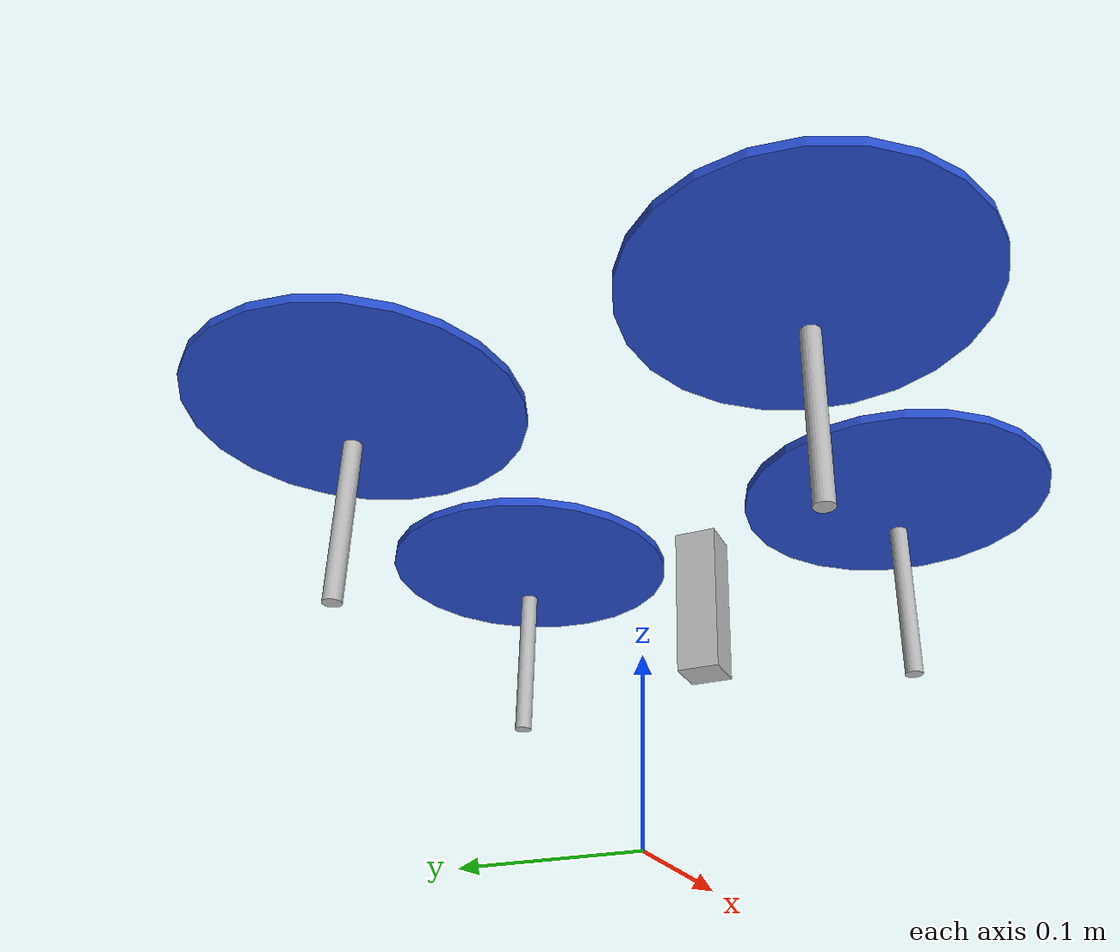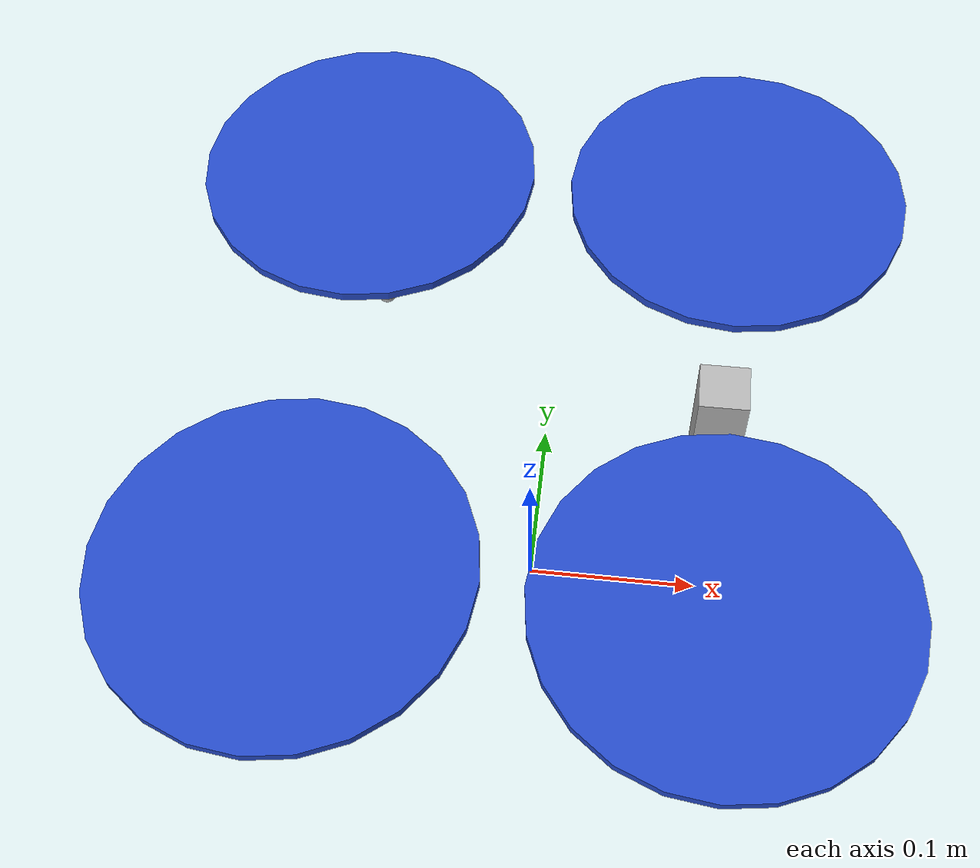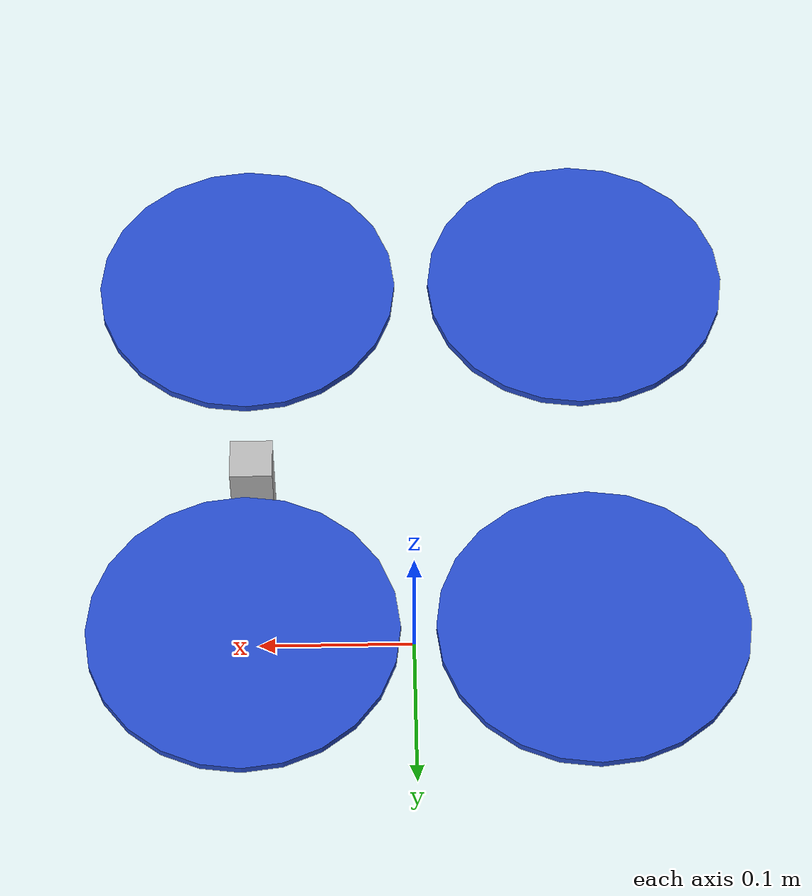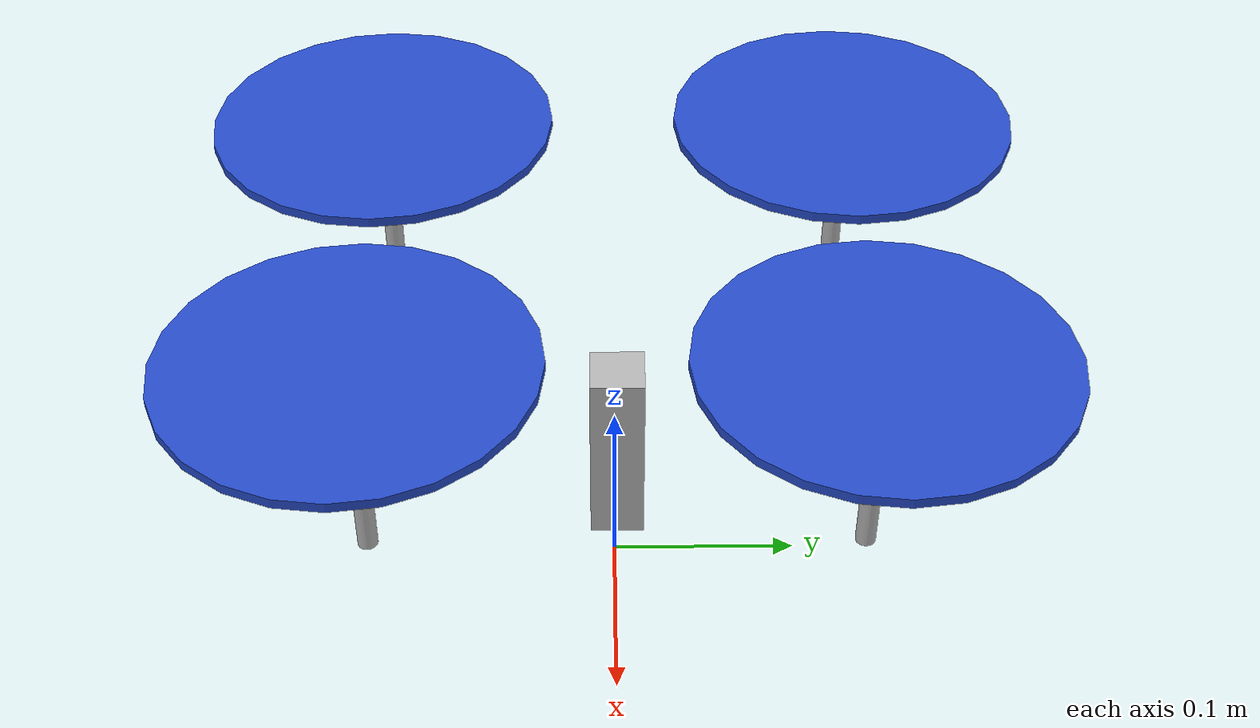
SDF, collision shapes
<?xml version='1.0'?>
<sdf version='1.6'>
    <model name='adrienne'>
        <pose>0 0 0.2 0 0 0</pose>
        <link name='base_link'>
            <velocity_decay>
                <linear>0.0</linear>
                <angular>0.0</angular>
            </velocity_decay>
            <inertial>
                <pose>0 0 0 0 0 0</pose>
                <mass>1.6</mass>
                <inertia>
                    <ixx>0.008</ixx>
                    <ixy>0</ixy>
                    <ixz>0</ixz>
                    <iyy>0.015</iyy>
                    <iyz>0</iyz>
                    <izz>0.017</izz>
                </inertia>
            </inertial>
            <visual name='base_link_visual'>
                <geometry>
                    <mesh>
                        <uri>model://adrienne/meshes/drone_assembly_wo_props.dae</uri>
                    </mesh>
                </geometry>
            </visual>

            <collision name='front_left_leg_collision'>
                <pose>0.0989 0.1209 -0.047 0 0 0</pose>
                <geometry>
                    <cylinder>
                        <radius>0.005</radius>
                        <length>0.09</length>
                    </cylinder>
                </geometry>
                <surface>
                    <contact>
                        <ode>
                            <max_vel>100.0</max_vel>
                            <min_depth>0.001</min_depth>
                        </ode>
                    </contact>
                    <friction>
                        <ode>
                            <mu>100000.0</mu>
                            <mu2>100000.0</mu2>
                        </ode>
                    </friction>
                </surface>
            </collision>
            <collision name='front_right_leg_collision'>
                <pose>0.0989 -0.1209 -0.047 0 0 0</pose>
                <geometry>
                    <cylinder>
                        <radius>0.005</radius>
                        <length>0.09</length>
                    </cylinder>
                </geometry>
                <surface>
                    <contact>
                        <ode>
                            <max_vel>100.0</max_vel>
                            <min_depth>0.001</min_depth>
                        </ode>
                    </contact>
                    <friction>
                        <ode>
                            <mu>100000.0</mu>
                            <mu2>100000.0</mu2>
                        </ode>
                    </friction>
                </surface>
            </collision>
            <collision name='rear_left_leg_collision'>
                <pose>-0.0989 0.1209 -0.047 0 0 0</pose>
                <geometry>
                    <cylinder>
                        <radius>0.005</radius>
                        <length>0.09</length>
                    </cylinder>
                </geometry>
                <surface>
                    <contact>
                        <ode>
                            <max_vel>100.0</max_vel>
                            <min_depth>0.001</min_depth>
                        </ode>
                    </contact>
                    <friction>
                        <ode>
                            <mu>100000.0</mu>
                            <mu2>100000.0</mu2>
                        </ode>
                    </friction>
                </surface>
            </collision>
            <collision name='rear_right_leg_collision'>
                <pose>-0.0989 -0.1209 -0.047 0 0 0</pose>
                <geometry>
                    <cylinder>
                        <radius>0.005</radius>
                        <length>0.09</length>
                    </cylinder>
                </geometry>
                <surface>
                    <contact>
                        <ode>
                            <max_vel>100.0</max_vel>
                            <min_depth>0.001</min_depth>
                        </ode>
                    </contact>
                    <friction>
                        <ode>
                            <mu>100000.0</mu>
                            <mu2>100000.0</mu2>
                        </ode>
                    </friction>
                </surface>
            </collision>
        </link>

        <link name='adrienne/imu_link'>
            <inertial>
                <pose>0 0 0 0 0 0</pose>
                <mass>0.0001</mass>
                <inertia>
                    <ixx>0.0001</ixx>
                    <ixy>0</ixy>
                    <ixz>0</ixz>
                    <iyy>0.0001</iyy>
                    <iyz>0</iyz>
                    <izz>0.0001</izz>
                </inertia>
            </inertial>
            <sensor name="imu_sensor" type="imu">
                <pose>0 0 0 3.141593 0 0</pose>
                <always_on>1</always_on>
                <update_rate>1000</update_rate>
            </sensor>
        </link>
        <joint name="adrienne/imu_joint" type="revolute">
            <child>adrienne/imu_link</child>
            <parent>base_link</parent>
            <axis>
                <xyz>0 0 1</xyz>
                <limit>
                    <lower>0</lower>
                    <upper>0</upper>
                    <effort>0</effort>
                    <velocity>0</velocity>
                </limit>
                <dynamics>
                    <damping>1.0</damping>
                </dynamics>
                <use_parent_model_frame>1</use_parent_model_frame>
            </axis>
            <physics>
                <ode>
                    <implicit_spring_damper>1</implicit_spring_damper>
                </ode>
            </physics>
        </joint>

        <link name='rotor_0'>
            <pose>0.0989 -0.1209 0.02 0 0 0</pose>
            <inertial>
                <pose>0 0 0 0 -0 0</pose>
                <mass>0.025</mass>
                <inertia>
                    <ixx>9.75e-06</ixx>
                    <ixy>0</ixy>
                    <ixz>0</ixz>
                    <iyy>0.000166704</iyy>
                    <iyz>0</iyz>
                    <izz>0.000167604</izz>
                </inertia>
            </inertial>
            <collision name='rotor_0_collision'>
                <pose>0 0 0 0 -0 0</pose>
                <geometry>
                    <!-- d = 7 inch disk shape collision -->
                    <cylinder>
                        <length>0.005</length>
                        <radius>0.0889</radius>
                    </cylinder>
                </geometry>
                <surface>
                    <contact>
                        <ode />
                    </contact>
                    <friction>
                        <ode />
                    </friction>
                </surface>
            </collision>
            <visual name='rotor_0_visual'>
                <pose>0 0 0 0 -0 0</pose>
                <geometry>
                    <mesh>
                        <scale>1 1 1</scale>
                        <uri>model://adrienne/meshes/prop_ccw.dae</uri>
                    </mesh>
                </geometry>
                <material>
                    <script>
                        <name>Gazebo/Blue</name>
                        <uri>__default__</uri>
                    </script>
                </material>
            </visual>
            <gravity>1</gravity>
            <velocity_decay />
            <self_collide>0</self_collide>
        </link>
        <joint name='rotor_0_joint' type='revolute'>
            <child>rotor_0</child>
            <parent>base_link</parent>
            <axis>
                <xyz>0 0 1</xyz>
                <limit>
                    <lower>-1e+16</lower>
                    <upper>1e+16</upper>
                </limit>
                <dynamics>
                    <damping>0.004</damping>
                </dynamics>
                <use_parent_model_frame>1</use_parent_model_frame>
            </axis>
            <physics>
                <ode>
                    <implicit_spring_damper>1</implicit_spring_damper>
                </ode>
            </physics>
            <sensor name="force_torque" type="force_torque">
                <update_rate>30</update_rate>
            </sensor>
        </joint>
        <link name="rotor_1">
            <pose>-0.0989 0.1209 0.02 0 0 0</pose>
            <inertial>
                <pose>0 0 0 0 -0 0</pose>
                <mass>0.025</mass>
                <inertia>
                    <ixx>9.75e-06</ixx>
                    <ixy>0</ixy>
                    <ixz>0</ixz>
                    <iyy>0.000166704</iyy>
                    <iyz>0</iyz>
                    <izz>0.000167604</izz>
                </inertia>
            </inertial>
            <collision name="rotor_1_collision">
                <pose>0 0 0 0 -0 0</pose>
                <geometry>
                    <!-- d = 7 inch disk shape collision -->
                    <cylinder>
                        <length>0.005</length>
                        <radius>0.0889</radius>
                    </cylinder>
                </geometry>
                <surface>
                    <contact>
                        <ode />
                    </contact>
                    <friction>
                        <ode />
                    </friction>
                </surface>
            </collision>
            <visual name="rotor_1_visual">
                <pose>0 0 0 0 -0 0</pose>
                <geometry>
                    <mesh>
                        <scale>1 1 1</scale>
                        <uri>model://adrienne/meshes/prop_ccw.dae</uri>
                    </mesh>
                </geometry>
                <material>
                    <script>
                        <name>Gazebo/Blue</name>
                        <uri>__default__</uri>
                    </script>
                </material>
            </visual>
            <gravity>1</gravity>
            <velocity_decay />
            <self_collide>0</self_collide>
        </link>
        <joint name="rotor_1_joint" type="revolute">
            <child>rotor_1</child>
            <parent>base_link</parent>
            <axis>
                <xyz>0 0 1</xyz>
                <limit>
                    <lower>-1e+16</lower>
                    <upper>1e+16</upper>
                </limit>
                <dynamics>
                    <damping>0.004</damping>
                </dynamics>
                <use_parent_model_frame>1</use_parent_model_frame>
            </axis>
            <physics>
                <ode>
                    <implicit_spring_damper>1</implicit_spring_damper>
                </ode>
            </physics>
            <sensor name="force_torque" type="force_torque">
                <update_rate>30</update_rate>
            </sensor>
        </joint>
        <link name="rotor_2">
            <pose>0.0989 0.1209 0.02 0 0 0</pose>
            <inertial>
                <pose>0 0 0 0 -0 0</pose>
                <mass>0.025</mass>
                <inertia>
                    <ixx>9.75e-06</ixx>
                    <ixy>0</ixy>
                    <ixz>0</ixz>
                    <iyy>0.000166704</iyy>
                    <iyz>0</iyz>
                    <izz>0.000167604</izz>
                </inertia>
            </inertial>
            <collision name="rotor_2_collision">
                <pose>0 0 0 0 -0 0</pose>
                <geometry>
                    <!-- d = 7 inch disk shape collision -->
                    <cylinder>
                        <length>0.005</length>
                        <radius>0.0889</radius>
                    </cylinder>
                </geometry>
                <surface>
                    <contact>
                        <ode />
                    </contact>
                    <friction>
                        <ode />
                    </friction>
                </surface>
            </collision>
            <visual name="rotor_2_visual">
                <pose>0 0 0 0 -0 0</pose>
                <geometry>
                    <mesh>
                        <scale>1 1 1</scale>
                        <uri>model://adrienne/meshes/prop_cw.dae</uri>
                    </mesh>
                </geometry>
                <material>
                    <script>
                        <name>Gazebo/Blue</name>
                        <uri>__default__</uri>
                    </script>
                </material>
            </visual>
            <gravity>1</gravity>
            <velocity_decay />
            <self_collide>0</self_collide>
        </link>
        <joint name="rotor_2_joint" type="revolute">
            <child>rotor_2</child>
            <parent>base_link</parent>
            <axis>
                <xyz>0 0 1</xyz>
                <limit>
                    <lower>-1e+16</lower>
                    <upper>1e+16</upper>
                </limit>
                <dynamics>
                    <damping>0.004</damping>
                </dynamics>
                <use_parent_model_frame>1</use_parent_model_frame>
            </axis>
            <physics>
                <ode>
                    <implicit_spring_damper>1</implicit_spring_damper>
                </ode>
            </physics>
            <sensor name="force_torque" type="force_torque">
                <update_rate>30</update_rate>
            </sensor>
        </joint>
        <link name="rotor_3">
            <pose>-0.0989 -0.1209 0.02 0 0 0</pose>
            <inertial>
                <pose>0 0 0 0 -0 0</pose>
                <mass>0.025</mass>
                <inertia>
                    <ixx>9.75e-06</ixx>
                    <ixy>0</ixy>
                    <ixz>0</ixz>
                    <iyy>0.000166704</iyy>
                    <iyz>0</iyz>
                    <izz>0.000167604</izz>
                </inertia>
            </inertial>
            <collision name="rotor_3_collision">
                <pose>0 0 0 0 -0 0</pose>
                <geometry>
                    <!-- d = 7 inch disk shape collision -->
                    <cylinder>
                        <length>0.005</length>
                        <radius>0.0889</radius>
                    </cylinder>
                </geometry>
                <surface>
                    <contact>
                        <ode />
                    </contact>
                    <friction>
                        <ode />
                    </friction>
                </surface>
            </collision>
            <visual name="rotor_3_visual">
                <pose>0 0 0 0 -0 0</pose>
                <geometry>
                    <mesh>
                        <scale>1 1 1</scale>
                        <uri>model://adrienne/meshes/prop_cw.dae</uri>
                    </mesh>
                </geometry>
                <material>
                    <script>
                        <name>Gazebo/Blue</name>
                        <uri>__default__</uri>
                    </script>
                </material>
            </visual>
            <gravity>1</gravity>
            <velocity_decay />
            <self_collide>0</self_collide>
        </link>
        <joint name="rotor_3_joint" type="revolute">
            <child>rotor_3</child>
            <parent>base_link</parent>
            <axis>
                <xyz>0 0 1</xyz>
                <limit>
                    <lower>-1e+16</lower>
                    <upper>1e+16</upper>
                </limit>
                <dynamics>
                    <damping>0.004</damping>
                </dynamics>
                <use_parent_model_frame>1</use_parent_model_frame>
            </axis>
            <physics>
                <ode>
                    <implicit_spring_damper>1</implicit_spring_damper>
                </ode>
            </physics>
            <sensor name="force_torque" type="force_torque">
                <update_rate>30</update_rate>
            </sensor>
        </joint>

        <!-- plugins -->

        <!-- rotor 0 -->
        <plugin name="rotor_0_blade_0" filename="libLiftDragPlugin.so">
            <a0>0.3</a0>
            <alpha_stall>1.4</alpha_stall>
            <cla>4.2500</cla>
            <cda>0.10</cda>
            <cma>0.00</cma>
            <cla_stall>-0.025</cla_stall>
            <cda_stall>0.0</cda_stall>
            <cma_stall>0.0</cma_stall>
            <area>0.003</area>
            <air_density>1.2041</air_density>
            <cp>0.044450 0.000000 0.000000</cp>
            <forward>0.000000 1.000000 0.000000</forward>
            <upward>0 0 1</upward>
            <link_name>adrienne::rotor_0</link_name>
        </plugin>
        <plugin name="rotor_0_blade_1" filename="libLiftDragPlugin.so">
            <a0>0.3</a0>
            <alpha_stall>1.4</alpha_stall>
            <cla>4.2500</cla>
            <cda>0.10</cda>
            <cma>0.00</cma>
            <cla_stall>-0.025</cla_stall>
            <cda_stall>0.0</cda_stall>
            <cma_stall>0.0</cma_stall>
            <area>0.003</area>
            <air_density>1.2041</air_density>
            <cp>-0.022225 0.038495 0.000000</cp>
            <forward>-0.866025 -0.500000 0.000000</forward>
            <upward>0 0 1</upward>
            <link_name>adrienne::rotor_0</link_name>
        </plugin>
        <plugin name="rotor_0_blade_2" filename="libLiftDragPlugin.so">
            <a0>0.3</a0>
            <alpha_stall>1.4</alpha_stall>
            <cla>4.2500</cla>
            <cda>0.10</cda>
            <cma>0.00</cma>
            <cla_stall>-0.025</cla_stall>
            <cda_stall>0.0</cda_stall>
            <cma_stall>0.0</cma_stall>
            <area>0.003</area>
            <air_density>1.2041</air_density>
            <cp>-0.022225 -0.038495 0.000000</cp>
            <forward>0.866025 -0.500000 0.000000</forward>
            <upward>0 0 1</upward>
            <link_name>adrienne::rotor_0</link_name>
        </plugin>

        <!-- rotor 1 -->
        <plugin name="rotor_1_blade_0" filename="libLiftDragPlugin.so">
            <a0>0.3</a0>
            <alpha_stall>1.4</alpha_stall>
            <cla>4.2500</cla>
            <cda>0.10</cda>
            <cma>0.00</cma>
            <cla_stall>-0.025</cla_stall>
            <cda_stall>0.0</cda_stall>
            <cma_stall>0.0</cma_stall>
            <area>0.003</area>
            <air_density>1.2041</air_density>
            <cp>0.044450 0.000000 0.000000</cp>
            <forward>0.000000 1.000000 0.000000</forward>
            <upward>0 0 1</upward>
            <link_name>adrienne::rotor_1</link_name>
        </plugin>
        <plugin name="rotor_1_blade_1" filename="libLiftDragPlugin.so">
            <a0>0.3</a0>
            <alpha_stall>1.4</alpha_stall>
            <cla>4.2500</cla>
            <cda>0.10</cda>
            <cma>0.00</cma>
            <cla_stall>-0.025</cla_stall>
            <cda_stall>0.0</cda_stall>
            <cma_stall>0.0</cma_stall>
            <area>0.003</area>
            <air_density>1.2041</air_density>
            <cp>-0.022225 0.038495 0.000000</cp>
            <forward>-0.866025 -0.500000 0.000000</forward>
            <upward>0 0 1</upward>
            <link_name>adrienne::rotor_1</link_name>
        </plugin>
        <plugin name="rotor_1_blade_2" filename="libLiftDragPlugin.so">
            <a0>0.3</a0>
            <alpha_stall>1.4</alpha_stall>
            <cla>4.2500</cla>
            <cda>0.10</cda>
            <cma>0.00</cma>
            <cla_stall>-0.025</cla_stall>
            <cda_stall>0.0</cda_stall>
            <cma_stall>0.0</cma_stall>
            <area>0.003</area>
            <air_density>1.2041</air_density>
            <cp>-0.022225 -0.038495 0.000000</cp>
            <forward>0.866025 -0.500000 0.000000</forward>
            <upward>0 0 1</upward>
            <link_name>adrienne::rotor_1</link_name>
        </plugin>

        <!-- rotor 2 -->
        <plugin name="rotor_2_blade_0" filename="libLiftDragPlugin.so">
            <a0>0.3</a0>
            <alpha_stall>1.4</alpha_stall>
            <cla>4.2500</cla>
            <cda>0.10</cda>
            <cma>0.00</cma>
            <cla_stall>-0.025</cla_stall>
            <cda_stall>0.0</cda_stall>
            <cma_stall>0.0</cma_stall>
            <area>0.003</area>
            <air_density>1.2041</air_density>
            <cp>0.044450 0.000000 0.000000</cp>
            <forward>0.000000 1.000000 0.000000</forward>
            <upward>0 0 -1</upward>
            <link_name>adrienne::rotor_2</link_name>
        </plugin>
        <plugin name="rotor_2_blade_1" filename="libLiftDragPlugin.so">
            <a0>0.3</a0>
            <alpha_stall>1.4</alpha_stall>
            <cla>4.2500</cla>
            <cda>0.10</cda>
            <cma>0.00</cma>
            <cla_stall>-0.025</cla_stall>
            <cda_stall>0.0</cda_stall>
            <cma_stall>0.0</cma_stall>
            <area>0.003</area>
            <air_density>1.2041</air_density>
            <cp>-0.022225 0.038495 0.000000</cp>
            <forward>-0.866025 -0.500000 0.000000</forward>
            <upward>0 0 -1</upward>
            <link_name>adrienne::rotor_2</link_name>
        </plugin>
        <plugin name="rotor_2_blade_2" filename="libLiftDragPlugin.so">
            <a0>0.3</a0>
            <alpha_stall>1.4</alpha_stall>
            <cla>4.2500</cla>
            <cda>0.10</cda>
            <cma>0.00</cma>
            <cla_stall>-0.025</cla_stall>
            <cda_stall>0.0</cda_stall>
            <cma_stall>0.0</cma_stall>
            <area>0.003</area>
            <air_density>1.2041</air_density>
            <cp>-0.022225 -0.038495 0.000000</cp>
            <forward>0.866025 -0.500000 0.000000</forward>
            <upward>0 0 -1</upward>
            <link_name>adrienne::rotor_2</link_name>
        </plugin>

        <!-- rotor 3 -->
        <plugin name="rotor_3_blade_0" filename="libLiftDragPlugin.so">
            <a0>0.3</a0>
            <alpha_stall>1.4</alpha_stall>
            <cla>4.2500</cla>
            <cda>0.10</cda>
            <cma>0.00</cma>
            <cla_stall>-0.025</cla_stall>
            <cda_stall>0.0</cda_stall>
            <cma_stall>0.0</cma_stall>
            <area>0.003</area>
            <air_density>1.2041</air_density>
            <cp>0.044450 0.000000 0.000000</cp>
            <forward>0.000000 1.000000 0.000000</forward>
            <upward>0 0 -1</upward>
            <link_name>adrienne::rotor_3</link_name>
        </plugin>
        <plugin name="rotor_3_blade_1" filename="libLiftDragPlugin.so">
            <a0>0.3</a0>
            <alpha_stall>1.4</alpha_stall>
            <cla>4.2500</cla>
            <cda>0.10</cda>
            <cma>0.00</cma>
            <cla_stall>-0.025</cla_stall>
            <cda_stall>0.0</cda_stall>
            <cma_stall>0.0</cma_stall>
            <area>0.003</area>
            <air_density>1.2041</air_density>
            <cp>-0.022225 0.038495 0.000000</cp>
            <forward>-0.866025 -0.500000 0.000000</forward>
            <upward>0 0 -1</upward>
            <link_name>adrienne::rotor_3</link_name>
        </plugin>
        <plugin name="rotor_3_blade_2" filename="libLiftDragPlugin.so">
            <a0>0.3</a0>
            <alpha_stall>1.4</alpha_stall>
            <cla>4.2500</cla>
            <cda>0.10</cda>
            <cma>0.00</cma>
            <cla_stall>-0.025</cla_stall>
            <cda_stall>0.0</cda_stall>
            <cma_stall>0.0</cma_stall>
            <area>0.003</area>
            <air_density>1.2041</air_density>
            <cp>-0.022225 -0.038495 0.000000</cp>
            <forward>0.866025 -0.500000 0.000000</forward>
            <upward>0 0 -1</upward>
            <link_name>adrienne::rotor_3</link_name>
        </plugin>

        <!-- ArduCopter -->
        <plugin name="arducopter_plugin" filename="libArduPilotPlugin.so">
            <fdm_addr>127.0.0.1</fdm_addr>
            <fdm_port_in>9002</fdm_port_in>
            <fdm_port_out>9003</fdm_port_out>
            <!--
                Require by APM :
                Only change model and gazebo from XYZ to XY-Z coordinates
            -->
            <modelXYZToAirplaneXForwardZDown>0 0 0 3.141593 0 0</modelXYZToAirplaneXForwardZDown>
            <gazeboXYZToNED>0 0 0 3.141593 0 0</gazeboXYZToNED>
            <imuName>adrienne::adrienne/imu_link::imu_sensor</imuName>
            <connectionTimeoutMaxCount>5</connectionTimeoutMaxCount>
            <control channel="0">
                <type>VELOCITY</type>
                <offset>0</offset>
                <p_gain>0.20</p_gain>
                <i_gain>0</i_gain>
                <d_gain>0</d_gain>
                <i_max>0</i_max>
                <i_min>0</i_min>
                <cmd_max>2.5</cmd_max>
                <cmd_min>-2.5</cmd_min>
                <jointName>adrienne::rotor_0_joint</jointName>
                <multiplier>838</multiplier>
                <controlVelocitySlowdownSim>1</controlVelocitySlowdownSim>
            </control>
            <control channel="1">
                <type>VELOCITY</type>
                <offset>0</offset>
                <p_gain>0.20</p_gain>
                <i_gain>0</i_gain>
                <d_gain>0</d_gain>
                <i_max>0</i_max>
                <i_min>0</i_min>
                <cmd_max>2.5</cmd_max>
                <cmd_min>-2.5</cmd_min>
                <jointName>adrienne::rotor_1_joint</jointName>
                <multiplier>838</multiplier>
                <controlVelocitySlowdownSim>1</controlVelocitySlowdownSim>
            </control>
            <control channel="2">
                <type>VELOCITY</type>
                <offset>0</offset>
                <p_gain>0.20</p_gain>
                <i_gain>0</i_gain>
                <d_gain>0</d_gain>
                <i_max>0</i_max>
                <i_min>0</i_min>
                <cmd_max>2.5</cmd_max>
                <cmd_min>-2.5</cmd_min>
                <jointName>adrienne::rotor_2_joint</jointName>
                <multiplier>-838</multiplier>
                <controlVelocitySlowdownSim>1</controlVelocitySlowdownSim>
            </control>
            <control channel="3">
                <type>VELOCITY</type>
                <offset>0</offset>
                <p_gain>0.20</p_gain>
                <i_gain>0</i_gain>
                <d_gain>0</d_gain>
                <i_max>0</i_max>
                <i_min>0</i_min>
                <cmd_max>2.5</cmd_max>
                <cmd_min>-2.5</cmd_min>
                <jointName>adrienne::rotor_3_joint</jointName>
                <multiplier>-838</multiplier>
                <controlVelocitySlowdownSim>1</controlVelocitySlowdownSim>
            </control>
        </plugin>

        <!-- rotor status tracker -->
        <plugin name="rotor_0_joint_state_tracker" filename="libgazebo_ros_p3d.so">
            <alwaysOn>true</alwaysOn>
            <frameName>base_link</frameName>
            <bodyName>rotor_0</bodyName>
            <topicName>trackers/rotor_0/joint_state</topicName>
            <updateRate>60</updateRate>
        </plugin>
        <plugin name="rotor_0_wrench_tracker" filename="libgazebo_ros_ft_sensor.so">
            <updateRate>60</updateRate>
            <topicName>trackers/rotor_0/wrench</topicName>
            <gaussianNoise>0.0</gaussianNoise>
            <jointName>rotor_0_joint</jointName>
        </plugin>
        <plugin name="rotor_1_joint_state_tracker" filename="libgazebo_ros_p3d.so">
            <alwaysOn>true</alwaysOn>
            <frameName>base_link</frameName>
            <bodyName>rotor_1</bodyName>
            <topicName>trackers/rotor_1/joint_state</topicName>
            <updateRate>60</updateRate>
        </plugin>
        <plugin name="rotor_1_wrench_tracker" filename="libgazebo_ros_ft_sensor.so">
            <updateRate>60</updateRate>
            <topicName>trackers/rotor_1/wrench</topicName>
            <gaussianNoise>0.0</gaussianNoise>
            <jointName>rotor_1_joint</jointName>
        </plugin>
        <plugin name="rotor_2_joint_state_tracker" filename="libgazebo_ros_p3d.so">
            <alwaysOn>true</alwaysOn>
            <frameName>base_link</frameName>
            <bodyName>rotor_2</bodyName>
            <topicName>trackers/rotor_2/joint_state</topicName>
            <updateRate>60</updateRate>
        </plugin>
        <plugin name="rotor_2_wrench_tracker" filename="libgazebo_ros_ft_sensor.so">
            <updateRate>60</updateRate>
            <topicName>trackers/rotor_2/wrench</topicName>
            <gaussianNoise>0.0</gaussianNoise>
            <jointName>rotor_2_joint</jointName>
        </plugin>
        <plugin name="rotor_3_joint_state_tracker" filename="libgazebo_ros_p3d.so">
            <alwaysOn>true</alwaysOn>
            <frameName>base_link</frameName>
            <bodyName>rotor_3</bodyName>
            <topicName>trackers/rotor_3/joint_state</topicName>
            <updateRate>60</updateRate>
        </plugin>
        <plugin name="rotor_3_wrench_tracker" filename="libgazebo_ros_ft_sensor.so">
            <updateRate>60</updateRate>
            <topicName>trackers/rotor_3/wrench</topicName>
            <gaussianNoise>0.0</gaussianNoise>
            <jointName>rotor_3_joint</jointName>
        </plugin>

        <!-- realsense stereo camera-->
        <link name="realsense_link">
            <pose>0.096 0 -0.03 0 0 0</pose>
            <collision name="realsense_link_collision">
                <pose>0 0 0 -1.57 0 -1.57</pose>
                <geometry>
                    <box>
                        <size>0.02505 0.090 0.025</size>
                    </box>
                </geometry>
            </collision>
            <inertial>
                <pose>0 0 0 0 0 0</pose>
                <inertia>
                    <ixx>0.001</ixx>
                    <ixy>0.000</ixy>
                    <ixz>0.000</ixz>
                    <iyy>0.001</iyy>
                    <iyz>0.000</iyz>
                    <izz>0.001</izz>
                </inertia>
                <mass>0.001</mass>
            </inertial>

            <sensor name="cameradepth" type="depth">
                <camera name="camera">
                    <horizontal_fov>1.57</horizontal_fov>
                    <image>
                        <width>1280</width>
                        <height>720</height>
                    </image>
                    <clip>
                        <near>0.1</near>
                        <far>100</far>
                    </clip>
                    <noise>
                        <type>gaussian</type>
                        <mean>0.0</mean>
                        <stddev>0.100</stddev>
                    </noise>
                </camera>
                <always_on>1</always_on>
                <update_rate>30</update_rate>
                <visualize>0</visualize>
            </sensor>
            <sensor name="cameracolor" type="camera">
                <camera name="camera">
                    <horizontal_fov>1.57</horizontal_fov>
                    <image>
                        <width>1280</width>
                        <height>720</height>
                        <format>RGB_INT8</format>
                    </image>
                    <clip>
                        <near>0.1</near>
                        <far>100</far>
                    </clip>
                    <noise>
                        <type>gaussian</type>
                        <mean>0.0</mean>
                        <stddev>0.007</stddev>
                    </noise>
                </camera>
                <always_on>1</always_on>
                <update_rate>30</update_rate>
                <visualize>1</visualize>
            </sensor>
            <sensor name="cameraired1" type="camera">
                <camera name="camera">
                    <horizontal_fov>1.57</horizontal_fov>
                    <image>
                        <width>1280</width>
                        <height>720</height>
                        <format>L_INT8</format>
                    </image>
                    <clip>
                        <near>0.1</near>
                        <far>100</far>
                    </clip>
                    <noise>
                        <type>gaussian</type>
                        <mean>0.0</mean>
                        <stddev>0.05</stddev>
                    </noise>
                </camera>
                <always_on>1</always_on>
                <update_rate>1</update_rate>
                <visualize>0</visualize>
            </sensor>
            <sensor name="cameraired2" type="camera">
                <camera name="camera">
                    <horizontal_fov>1.57</horizontal_fov>
                    <image>
                        <width>1280</width>
                        <height>720</height>
                        <format>L_INT8</format>
                    </image>
                    <clip>
                        <near>0.1</near>
                        <far>100</far>
                    </clip>
                    <noise>
                        <type>gaussian</type>
                        <mean>0.0</mean>
                        <stddev>0.05</stddev>
                    </noise>
                </camera>
                <always_on>1</always_on>
                <update_rate>1</update_rate>
                <visualize>0</visualize>
            </sensor>
        </link>

        <joint name="realsense_joint" type="fixed">
            <parent>base_link</parent>
            <child>realsense_link</child>
            <pose>0 0 0 -1.57 0 -1.57</pose>
        </joint>

        <plugin name="camera" filename="librealsense_gazebo_plugin.so">
            <prefix>camera</prefix>
            <depthUpdateRate>10.0</depthUpdateRate>
            <colorUpdateRate>10.0</colorUpdateRate>
            <infraredUpdateRate>1.0</infraredUpdateRate>
            <depthTopicName>aligned_depth_to_color/image_raw</depthTopicName>
            <depthCameraInfoTopicName>depth/camera_info</depthCameraInfoTopicName>
            <colorTopicName>color/image_raw</colorTopicName>
            <colorCameraInfoTopicName>color/camera_info</colorCameraInfoTopicName>
            <infrared1TopicName>infra1/image_raw</infrared1TopicName>
            <infrared1CameraInfoTopicName>infra1/camera_info</infrared1CameraInfoTopicName>
            <infrared2TopicName>infra2/image_raw</infrared2TopicName>
            <infrared2CameraInfoTopicName>infra2/camera_info</infrared2CameraInfoTopicName>
            <colorOpticalframeName>camera_color_optical_frame</colorOpticalframeName>
            <depthOpticalframeName>camera_depth_optical_frame</depthOpticalframeName>
            <infrared1OpticalframeName>camera_left_ir_optical_frame</infrared1OpticalframeName>
            <infrared2OpticalframeName>camera_right_ir_optical_frame</infrared2OpticalframeName>
            <rangeMinDepth>0.2</rangeMinDepth>
            <rangeMaxDepth>10.0</rangeMaxDepth>
            <pointCloud>true</pointCloud>
            <pointCloudTopicName>depth/color/points</pointCloudTopicName>
            <pointCloudCutoff>0.25</pointCloudCutoff>
            <pointCloudCutoffMax>9.0</pointCloudCutoffMax>
        </plugin>

    </model>
</sdf>
